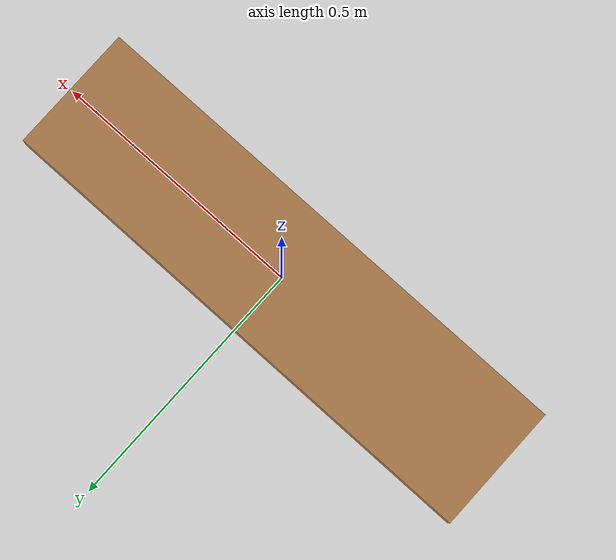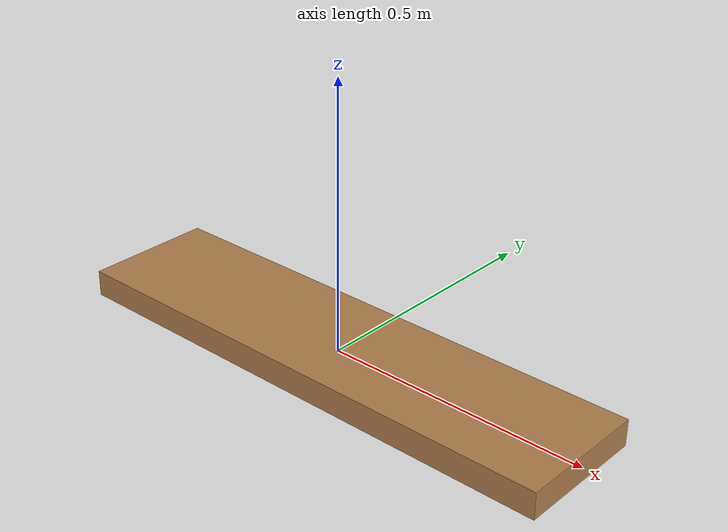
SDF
<?xml version="1.0"?>
<sdf version="1.6">
  <model name="plate">
    <static>false</static>
    <link name="plate_link">
      <inertial>
        <mass>1.0</mass>
        <inertia>
          <ixx>0.1</ixx>
          <iyy>0.1</iyy>
          <izz>0.1</izz>
        </inertia>
      </inertial>
      <visual name="plate_visual">
        <geometry>
          <box>
            <size>1.0 0.25 0.05</size>
          </box>
        </geometry>
        <material>
            <script>
            <uri>file://media/materials/scripts/gazebo.material</uri>
            <name>Gazebo/WoodPallet</name>
            </script>
        </material>
      </visual>
      <collision name="plate_collision">
        <geometry>
          <box>
            <size>1.0 0.25 0.05</size>
          </box>
        </geometry>
      </collision>
    </link>
  </model>
</sdf>
